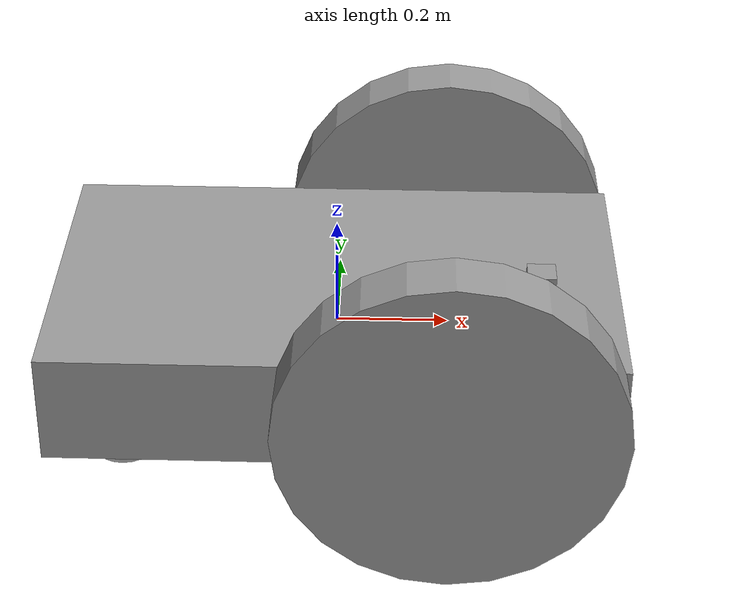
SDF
<?xml version='1.0'?>
<sdf version='1.6'>
  <model name='mobile_robot'>
    <link name='link'>
      <inertial>
        <mass>1</mass>
        <inertia>
          <ixx>0.166667</ixx>
          <ixy>0</ixy>
          <ixz>0</ixz>
          <iyy>0.166667</iyy>
          <iyz>0</iyz>
          <izz>0.166667</izz>
        </inertia>
        <pose frame=''>0 0 0 0 -0 0</pose>
      </inertial>
      <self_collide>0</self_collide>
      <enable_wind>0</enable_wind>
      <kinematic>0</kinematic>
      <pose frame=''>0 0 0 0 -0 0</pose>
      <gravity>1</gravity>
      <visual name='visual'>
        <geometry>
          <box>
            <size>1 0.6 0.2</size>
          </box>
        </geometry>
        <material>
          <script>
            <name>Gazebo/Grey</name>
            <uri>file://media/materials/scripts/gazebo.material</uri>
          </script>
          <shader type='vertex'>
            <normal_map>__default__</normal_map>
          </shader>
          <ambient>0.3 0.3 0.3 1</ambient>
          <diffuse>0.7 0.7 0.7 1</diffuse>
          <specular>0.01 0.01 0.01 1</specular>
          <emissive>0 0 0 1</emissive>
        </material>
        <pose frame=''>0 0 0 0 -0 0</pose>
        <transparency>0</transparency>
        <cast_shadows>1</cast_shadows>
      </visual>
      <collision name='collision'>
        <laser_retro>0</laser_retro>
        <max_contacts>10</max_contacts>
        <pose frame=''>0 0 0 0 -0 0</pose>
        <geometry>
          <box>
            <size>1 0.6 0.2</size>
          </box>
        </geometry>
        <surface>
          <friction>
            <ode>
              <mu>1</mu>
              <mu2>1</mu2>
              <fdir1>0 0 0</fdir1>
              <slip1>0</slip1>
              <slip2>0</slip2>
            </ode>
            <torsional>
              <coefficient>1</coefficient>
              <patch_radius>0</patch_radius>
              <surface_radius>0</surface_radius>
              <use_patch_radius>1</use_patch_radius>
              <ode>
                <slip>0</slip>
              </ode>
            </torsional>
          </friction>
          <bounce>
            <restitution_coefficient>0</restitution_coefficient>
            <threshold>1e+06</threshold>
          </bounce>
          <contact>
            <collide_without_contact>0</collide_without_contact>
            <collide_without_contact_bitmask>1</collide_without_contact_bitmask>
            <collide_bitmask>1</collide_bitmask>
            <ode>
              <soft_cfm>0</soft_cfm>
              <soft_erp>0.2</soft_erp>
              <kp>1e+13</kp>
              <kd>1</kd>
              <max_vel>0.01</max_vel>
              <min_depth>0</min_depth>
            </ode>
            <bullet>
              <split_impulse>1</split_impulse>
              <split_impulse_penetration_threshold>-0.01</split_impulse_penetration_threshold>
              <soft_cfm>0</soft_cfm>
              <soft_erp>0.2</soft_erp>
              <kp>1e+13</kp>
              <kd>1</kd>
            </bullet>
          </contact>
        </surface>
      </collision>
    </link>
    <link name='link_1'>
      <inertial>
        <mass>1</mass>
        <inertia>
          <ixx>0.145833</ixx>
          <ixy>0</ixy>
          <ixz>0</ixz>
          <iyy>0.145833</iyy>
          <iyz>0</iyz>
          <izz>0.125</izz>
        </inertia>
        <pose frame=''>0 0 0 0 -0 0</pose>
      </inertial>
      <pose frame=''>0.2 -0.350027 0.02 1.5707 -0 0</pose>
      <gravity>1</gravity>
      <self_collide>0</self_collide>
      <kinematic>0</kinematic>
      <enable_wind>0</enable_wind>
      <visual name='visual'>
        <pose frame=''>0 0 0 0 -0 0</pose>
        <geometry>
          <cylinder>
            <radius>0.3</radius>
            <length>0.1</length>
          </cylinder>
        </geometry>
        <material>
          <lighting>1</lighting>
          <script>
            <uri>file://media/materials/scripts/gazebo.material</uri>
            <name>Gazebo/Grey</name>
          </script>
          <shader type='vertex'>
            <normal_map>__default__</normal_map>
          </shader>
          <ambient>0.3 0.3 0.3 1</ambient>
          <diffuse>0.7 0.7 0.7 1</diffuse>
          <specular>0.01 0.01 0.01 1</specular>
          <emissive>0 0 0 1</emissive>
        </material>
        <transparency>0</transparency>
        <cast_shadows>1</cast_shadows>
      </visual>
      <collision name='collision'>
        <laser_retro>0</laser_retro>
        <max_contacts>10</max_contacts>
        <pose frame=''>0 0 0 0 -0 0</pose>
        <geometry>
          <cylinder>
            <radius>0.3</radius>
            <length>0.1</length>
          </cylinder>
        </geometry>
        <surface>
          <friction>
            <ode>
              <mu>1</mu>
              <mu2>1</mu2>
              <fdir1>0 0 0</fdir1>
              <slip1>0</slip1>
              <slip2>0</slip2>
            </ode>
            <torsional>
              <coefficient>1</coefficient>
              <patch_radius>0</patch_radius>
              <surface_radius>0</surface_radius>
              <use_patch_radius>1</use_patch_radius>
              <ode>
                <slip>0</slip>
              </ode>
            </torsional>
          </friction>
          <bounce>
            <restitution_coefficient>0</restitution_coefficient>
            <threshold>1e+06</threshold>
          </bounce>
          <contact>
            <collide_without_contact>0</collide_without_contact>
            <collide_without_contact_bitmask>1</collide_without_contact_bitmask>
            <collide_bitmask>1</collide_bitmask>
            <ode>
              <soft_cfm>0</soft_cfm>
              <soft_erp>0.2</soft_erp>
              <kp>1e+13</kp>
              <kd>1</kd>
              <max_vel>0.01</max_vel>
              <min_depth>0</min_depth>
            </ode>
            <bullet>
              <split_impulse>1</split_impulse>
              <split_impulse_penetration_threshold>-0.01</split_impulse_penetration_threshold>
              <soft_cfm>0</soft_cfm>
              <soft_erp>0.2</soft_erp>
              <kp>1e+13</kp>
              <kd>1</kd>
            </bullet>
          </contact>
        </surface>
      </collision>
    </link>
    <link name='link_1_clone'>
      <inertial>
        <mass>1</mass>
        <inertia>
          <ixx>0.145833</ixx>
          <ixy>0</ixy>
          <ixz>0</ixz>
          <iyy>0.145833</iyy>
          <iyz>0</iyz>
          <izz>0.125</izz>
        </inertia>
        <pose frame=''>0 0 0 0 -0 0</pose>
      </inertial>
      <pose frame=''>0.2 0.35003 0.019997 1.57069 -0 0</pose>
      <gravity>1</gravity>
      <self_collide>0</self_collide>
      <kinematic>0</kinematic>
      <enable_wind>0</enable_wind>
      <visual name='visual'>
        <pose frame=''>0 0 0 0 -0 0</pose>
        <geometry>
          <cylinder>
            <radius>0.3</radius>
            <length>0.1</length>
          </cylinder>
        </geometry>
        <material>
          <lighting>1</lighting>
          <script>
            <uri>file://media/materials/scripts/gazebo.material</uri>
            <name>Gazebo/Grey</name>
          </script>
          <shader type='vertex'>
            <normal_map>__default__</normal_map>
          </shader>
          <ambient>0.3 0.3 0.3 1</ambient>
          <diffuse>0.7 0.7 0.7 1</diffuse>
          <specular>0.01 0.01 0.01 1</specular>
          <emissive>0 0 0 1</emissive>
        </material>
        <transparency>0</transparency>
        <cast_shadows>1</cast_shadows>
      </visual>
      <collision name='collision'>
        <laser_retro>0</laser_retro>
        <max_contacts>10</max_contacts>
        <pose frame=''>0 0 0 0 -0 0</pose>
        <geometry>
          <cylinder>
            <radius>0.3</radius>
            <length>0.1</length>
          </cylinder>
        </geometry>
        <surface>
          <friction>
            <ode>
              <mu>1</mu>
              <mu2>1</mu2>
              <fdir1>0 0 0</fdir1>
              <slip1>0</slip1>
              <slip2>0</slip2>
            </ode>
            <torsional>
              <coefficient>1</coefficient>
              <patch_radius>0</patch_radius>
              <surface_radius>0</surface_radius>
              <use_patch_radius>1</use_patch_radius>
              <ode>
                <slip>0</slip>
              </ode>
            </torsional>
          </friction>
          <bounce>
            <restitution_coefficient>0</restitution_coefficient>
            <threshold>1e+06</threshold>
          </bounce>
          <contact>
            <collide_without_contact>0</collide_without_contact>
            <collide_without_contact_bitmask>1</collide_without_contact_bitmask>
            <collide_bitmask>1</collide_bitmask>
            <ode>
              <soft_cfm>0</soft_cfm>
              <soft_erp>0.2</soft_erp>
              <kp>1e+13</kp>
              <kd>1</kd>
              <max_vel>0.01</max_vel>
              <min_depth>0</min_depth>
            </ode>
            <bullet>
              <split_impulse>1</split_impulse>
              <split_impulse_penetration_threshold>-0.01</split_impulse_penetration_threshold>
              <soft_cfm>0</soft_cfm>
              <soft_erp>0.2</soft_erp>
              <kp>1e+13</kp>
              <kd>1</kd>
            </bullet>
          </contact>
        </surface>
      </collision>
    </link>
    <link name='link_2'>
      <inertial>
        <mass>1</mass>
        <inertia>
          <ixx>0.1</ixx>
          <ixy>0</ixy>
          <ixz>0</ixz>
          <iyy>0.1</iyy>
          <iyz>0</iyz>
          <izz>0.1</izz>
        </inertia>
        <pose frame=''>0 0 0 0 -0 0</pose>
      </inertial>
      <pose frame=''>-0.4 -0.020003 -0.2 -1e-05 -0 0</pose>
      <gravity>1</gravity>
      <self_collide>0</self_collide>
      <kinematic>0</kinematic>
      <enable_wind>0</enable_wind>
      <visual name='visual'>
        <pose frame=''>0 0 0 0 -0 0</pose>
        <geometry>
          <sphere>
            <radius>0.1</radius>
          </sphere>
        </geometry>
        <material>
          <lighting>1</lighting>
          <script>
            <uri>file://media/materials/scripts/gazebo.material</uri>
            <name>Gazebo/Grey</name>
          </script>
          <shader type='vertex'>
            <normal_map>__default__</normal_map>
          </shader>
          <ambient>0.3 0.3 0.3 1</ambient>
          <diffuse>0.7 0.7 0.7 1</diffuse>
          <specular>0.01 0.01 0.01 1</specular>
          <emissive>0 0 0 1</emissive>
        </material>
        <transparency>0</transparency>
        <cast_shadows>1</cast_shadows>
      </visual>
      <collision name='collision'>
        <laser_retro>0</laser_retro>
        <max_contacts>10</max_contacts>
        <pose frame=''>0 0 0 0 -0 0</pose>
        <geometry>
          <sphere>
            <radius>0.1</radius>
          </sphere>
        </geometry>
        <surface>
          <friction>
            <ode>
              <mu>1</mu>
              <mu2>1</mu2>
              <fdir1>0 0 0</fdir1>
              <slip1>0</slip1>
              <slip2>0</slip2>
            </ode>
            <torsional>
              <coefficient>1</coefficient>
              <patch_radius>0</patch_radius>
              <surface_radius>0</surface_radius>
              <use_patch_radius>1</use_patch_radius>
              <ode>
                <slip>0</slip>
              </ode>
            </torsional>
          </friction>
          <bounce>
            <restitution_coefficient>0</restitution_coefficient>
            <threshold>1e+06</threshold>
          </bounce>
          <contact>
            <collide_without_contact>0</collide_without_contact>
            <collide_without_contact_bitmask>1</collide_without_contact_bitmask>
            <collide_bitmask>1</collide_bitmask>
            <ode>
              <soft_cfm>0</soft_cfm>
              <soft_erp>0.2</soft_erp>
              <kp>1e+13</kp>
              <kd>1</kd>
              <max_vel>0.01</max_vel>
              <min_depth>0</min_depth>
            </ode>
            <bullet>
              <split_impulse>1</split_impulse>
              <split_impulse_penetration_threshold>-0.01</split_impulse_penetration_threshold>
              <soft_cfm>0</soft_cfm>
              <soft_erp>0.2</soft_erp>
              <kp>1e+13</kp>
              <kd>1</kd>
            </bullet>
          </contact>
        </surface>
      </collision>
    </link>
    <link name='link_3'>
      <inertial>
        <mass>1</mass>
        <inertia>
          <ixx>0.166667</ixx>
          <ixy>0</ixy>
          <ixz>0</ixz>
          <iyy>0.166667</iyy>
          <iyz>0</iyz>
          <izz>0.166667</izz>
        </inertia>
        <pose frame=''>0 0 0 0 -0 0</pose>
      </inertial>
      <pose frame=''>0.360001 -0.057499 0.12 -1e-05 -0 0</pose>
      <gravity>1</gravity>
      <self_collide>0</self_collide>
      <kinematic>0</kinematic>
      <enable_wind>0</enable_wind>
      <visual name='visual'>
        <pose frame=''>0 0 0 0 -0 0</pose>
        <geometry>
          <box>
            <size>0.05 0.05 0.05</size>
          </box>
        </geometry>
        <material>
          <lighting>1</lighting>
          <script>
            <uri>file://media/materials/scripts/gazebo.material</uri>
            <name>Gazebo/Grey</name>
          </script>
          <shader type='vertex'>
            <normal_map>__default__</normal_map>
          </shader>
          <ambient>0.3 0.3 0.3 1</ambient>
          <diffuse>0.7 0.7 0.7 1</diffuse>
          <specular>0.01 0.01 0.01 1</specular>
          <emissive>0 0 0 1</emissive>
        </material>
        <transparency>0</transparency>
        <cast_shadows>1</cast_shadows>
      </visual>
      <collision name='collision'>
        <laser_retro>0</laser_retro>
        <max_contacts>10</max_contacts>
        <pose frame=''>0 0 0 0 -0 0</pose>
        <geometry>
          <box>
            <size>0.05 0.05 0.05</size>
          </box>
        </geometry>
        <surface>
          <friction>
            <ode>
              <mu>1</mu>
              <mu2>1</mu2>
              <fdir1>0 0 0</fdir1>
              <slip1>0</slip1>
              <slip2>0</slip2>
            </ode>
            <torsional>
              <coefficient>1</coefficient>
              <patch_radius>0</patch_radius>
              <surface_radius>0</surface_radius>
              <use_patch_radius>1</use_patch_radius>
              <ode>
                <slip>0</slip>
              </ode>
            </torsional>
          </friction>
          <bounce>
            <restitution_coefficient>0</restitution_coefficient>
            <threshold>1e+06</threshold>
          </bounce>
          <contact>
            <collide_without_contact>0</collide_without_contact>
            <collide_without_contact_bitmask>1</collide_without_contact_bitmask>
            <collide_bitmask>1</collide_bitmask>
            <ode>
              <soft_cfm>0</soft_cfm>
              <soft_erp>0.2</soft_erp>
              <kp>1e+13</kp>
              <kd>1</kd>
              <max_vel>0.01</max_vel>
              <min_depth>0</min_depth>
            </ode>
            <bullet>
              <split_impulse>1</split_impulse>
              <split_impulse_penetration_threshold>-0.01</split_impulse_penetration_threshold>
              <soft_cfm>0</soft_cfm>
              <soft_erp>0.2</soft_erp>
              <kp>1e+13</kp>
              <kd>1</kd>
            </bullet>
          </contact>
        </surface>
      </collision>
    </link>
    <joint name='link_JOINT_1' type='revolute'>
      <parent>link</parent>
      <child>link_1</child>
      <pose frame=''>0 0 0 0 -0 0</pose>
      <axis>
        <xyz>0 0 -1</xyz>
        <use_parent_model_frame>0</use_parent_model_frame>
        <limit>
          <lower>-1.79769e+308</lower>
          <upper>1.79769e+308</upper>
          <effort>-1</effort>
          <velocity>-1</velocity>
        </limit>
        <dynamics>
          <spring_reference>0</spring_reference>
          <spring_stiffness>0</spring_stiffness>
          <damping>0</damping>
          <friction>0</friction>
        </dynamics>
      </axis>
      <physics>
        <ode>
          <limit>
            <cfm>0</cfm>
            <erp>0.2</erp>
          </limit>
          <suspension>
            <cfm>0</cfm>
            <erp>0.2</erp>
          </suspension>
        </ode>
      </physics>
    </joint>
    <joint name='link_JOINT_2' type='revolute'>
      <parent>link</parent>
      <child>link_1_clone</child>
      <pose frame=''>0 0 0 0 -0 0</pose>
      <axis>
        <xyz>0 0 1</xyz>
        <use_parent_model_frame>0</use_parent_model_frame>
        <limit>
          <lower>-1.79769e+308</lower>
          <upper>1.79769e+308</upper>
          <effort>-1</effort>
          <velocity>-1</velocity>
        </limit>
        <dynamics>
          <spring_reference>0</spring_reference>
          <spring_stiffness>0</spring_stiffness>
          <damping>0</damping>
        </dynamics>
      </axis>
      <physics>
        <ode>
          <limit>
            <cfm>0</cfm>
            <erp>0.2</erp>
          </limit>
          <suspension>
            <cfm>0</cfm>
            <erp>0.2</erp>
          </suspension>
        </ode>
      </physics>
    </joint>
    <joint name='link_JOINT_3' type='ball'>
      <parent>link</parent>
      <child>link_2</child>
      <pose frame=''>0 0 -0 0 -0 0</pose>
      <physics>
        <ode>
          <limit>
            <cfm>0</cfm>
            <erp>0.2</erp>
          </limit>
          <suspension>
            <cfm>0</cfm>
            <erp>0.2</erp>
          </suspension>
        </ode>
      </physics>
    </joint>
    <joint name='link_JOINT_4' type='fixed'>
      <parent>link</parent>
      <child>link_3</child>
      <pose frame=''>0 0 0 0 -0 0</pose>
      <physics>
        <ode>
          <limit>
            <cfm>0</cfm>
            <erp>0.2</erp>
          </limit>
          <suspension>
            <cfm>0</cfm>
            <erp>0.2</erp>
          </suspension>
        </ode>
      </physics>
    </joint>
    <static>0</static>
    <allow_auto_disable>1</allow_auto_disable>
  </model>
</sdf>
